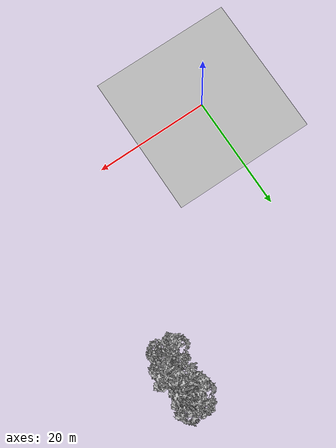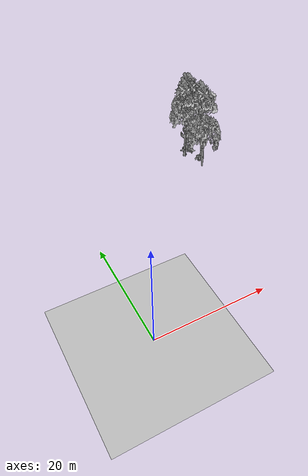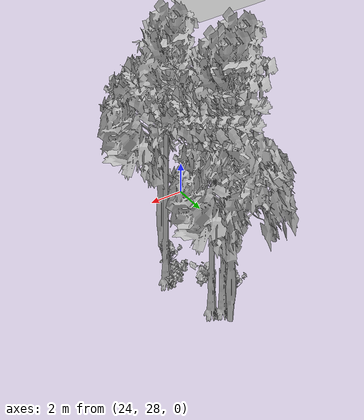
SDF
<sdf version="1.7">
 <world name="default">
  <model name="ground_plane">
   <static>1</static>
   <link name="link">
    <collision name="collision">
     <pose>-50 0 0 0 -0 0</pose>
     <geometry><plane><normal>0 0 1</normal><size>80 80</size></plane></geometry>
     <surface><contact><ode><min_depth>0.01</min_depth><max_vel>0</max_vel></ode></contact></surface>
    </collision>
    <visual name="grass">
     <cast_shadows>0</cast_shadows>
     <geometry>
      <mesh>
       <scale>0.46714285714285714 0.46714285714285714 0.1</scale>
       <uri>file://grass_plane/meshes/grass_plane.dae</uri>
      </mesh>
     </geometry>
    </visual>
   </link>
  </model>
  <model name="Tree 120">
   <static>1</static>
   <pose>28.46346168655623 37.91754921445447 0 1.57079 -0 0</pose>
   <link name="link">
    <collision name="collision">
     <geometry><mesh><scale>3.5 5 3.5</scale><uri>model://tree_9/meshes/tree_9.obj</uri></mesh></geometry>
    </collision>
    <visual name="visual">
     <geometry><mesh><scale>3.5 5 3.5</scale><uri>model://tree_9/meshes/tree_9.obj</uri></mesh></geometry>
    </visual>
   </link>
  </model>
  <model name="Tree 149">
   <static>1</static>
   <pose>28.056543395080567 39.23460713291536 0 1.57079 -0 0</pose>
   <link name="link">
    <collision name="collision">
     <geometry><mesh><scale>3.5 5 3.5</scale><uri>model://tree_2/meshes/tree_2.obj</uri></mesh></geometry>
    </collision>
    <visual name="visual">
     <geometry><mesh><scale>3.5 5 3.5</scale><uri>model://tree_2/meshes/tree_2.obj</uri></mesh></geometry>
    </visual>
   </link>
  </model>
  <model name="Tree 265">
   <static>1</static>
   <pose>27.914727630627098 38.176580582846896 0 1.57079 -0 0</pose>
   <link name="link">
    <collision name="collision">
     <geometry><mesh><scale>3.5 5 3.5</scale><uri>model://tree_9/meshes/tree_9.obj</uri></mesh></geometry>
    </collision>
    <visual name="visual">
     <geometry><mesh><scale>3.5 5 3.5</scale><uri>model://tree_9/meshes/tree_9.obj</uri></mesh></geometry>
    </visual>
   </link>
  </model>
  <model name="Tree 276">
   <static>1</static>
   <pose>29.076298586194994 34.352491461080476 0 1.57079 -0 0</pose>
   <link name="link">
    <collision name="collision">
     <geometry><mesh><scale>3.5 5 3.5</scale><uri>model://tree_9/meshes/tree_9.obj</uri></mesh></geometry>
    </collision>
    <visual name="visual">
     <geometry><mesh><scale>3.5 5 3.5</scale><uri>model://tree_9/meshes/tree_9.obj</uri></mesh></geometry>
    </visual>
   </link>
  </model>
  <model name="Tree 327">
   <static>1</static>
   <pose>26.712314618789406 36.99960084898679 0 1.57079 -0 0</pose>
   <link name="link">
    <collision name="collision">
     <geometry><mesh><scale>3.5 5 3.5</scale><uri>model://tree_9/meshes/tree_9.obj</uri></mesh></geometry>
    </collision>
    <visual name="visual">
     <geometry><mesh><scale>3.5 5 3.5</scale><uri>model://tree_9/meshes/tree_9.obj</uri></mesh></geometry>
    </visual>
   </link>
  </model>
  <model name="Tree 422">
   <static>1</static>
   <pose>27.628824107177437 31.703989414311934 0 1.57079 -0 0</pose>
   <link name="link">
    <collision name="collision">
     <geometry><mesh><scale>3.5 5 3.5</scale><uri>model://tree_2/meshes/tree_2.obj</uri></mesh></geometry>
    </collision>
    <visual name="visual">
     <geometry><mesh><scale>3.5 5 3.5</scale><uri>model://tree_2/meshes/tree_2.obj</uri></mesh></geometry>
    </visual>
   </link>
  </model>
  <model name="Bush 185">
   <static>1</static>
   <pose>27.976684331972038 33.90126594950681 0 1.57079 -0 0</pose>
   <link name="link">
    <collision name="collision">
     <geometry><mesh><scale>2 2 2</scale><uri>model://bush_2/meshes/bush_2.obj</uri></mesh></geometry>
     <surface><contact><collide_without_contact>false</collide_without_contact></contact></surface>
    </collision>
    <visual name="visual">
     <geometry><mesh><scale>2 2 2</scale><uri>model://bush_2/meshes/bush_2.obj</uri></mesh></geometry>
    </visual>
   </link>
  </model>
  <model name="Bush 198">
   <static>1</static>
   <pose>28.155071126113455 33.162231667735085 0 1.57079 -0 0</pose>
   <link name="link">
    <collision name="collision">
     <geometry><mesh><scale>2 2 2</scale><uri>model://bush_4/meshes/bush_4.obj</uri></mesh></geometry>
     <surface><contact><collide_without_contact>false</collide_without_contact></contact></surface>
    </collision>
    <visual name="visual">
     <geometry><mesh><scale>2 2 2</scale><uri>model://bush_4/meshes/bush_4.obj</uri></mesh></geometry>
    </visual>
   </link>
  </model>
  <model name="Bush 277">
   <static>1</static>
   <pose>28.707826822742803 34.57773944542302 0 1.57079 -0 0</pose>
   <link name="link">
    <collision name="collision">
     <geometry><mesh><scale>2 2 2</scale><uri>model://bush_2/meshes/bush_2.obj</uri></mesh></geometry>
     <surface><contact><collide_without_contact>false</collide_without_contact></contact></surface>
    </collision>
    <visual name="visual">
     <geometry><mesh><scale>2 2 2</scale><uri>model://bush_2/meshes/bush_2.obj</uri></mesh></geometry>
    </visual>
   </link>
  </model>
  <model name="Bush 373">
   <static>1</static>
   <pose>26.59175378290071 37.200555295880434 0 1.57079 -0 0</pose>
   <link name="link">
    <collision name="collision">
     <geometry><mesh><scale>2 2 2</scale><uri>model://bush_4/meshes/bush_4.obj</uri></mesh></geometry>
     <surface><contact><collide_without_contact>false</collide_without_contact></contact></surface>
    </collision>
    <visual name="visual">
     <geometry><mesh><scale>2 2 2</scale><uri>model://bush_4/meshes/bush_4.obj</uri></mesh></geometry>
    </visual>
   </link>
  </model>
  <model name="Bush 378">
   <static>1</static>
   <pose>27.84845632858432 36.00848309509301 0 1.57079 -0 0</pose>
   <link name="link">
    <collision name="collision">
     <geometry><mesh><scale>2 2 2</scale><uri>model://bush_0/meshes/bush_0.obj</uri></mesh></geometry>
     <surface><contact><collide_without_contact>false</collide_without_contact></contact></surface>
    </collision>
    <visual name="visual">
     <geometry><mesh><scale>2 2 2</scale><uri>model://bush_0/meshes/bush_0.obj</uri></mesh></geometry>
    </visual>
   </link>
  </model>
  <model name="Bush 411">
   <static>1</static>
   <pose>28.71852507674575 34.454723484558 0 1.57079 -0 0</pose>
   <link name="link">
    <collision name="collision">
     <geometry><mesh><scale>2 2 2</scale><uri>model://bush_2/meshes/bush_2.obj</uri></mesh></geometry>
     <surface><contact><collide_without_contact>false</collide_without_contact></contact></surface>
    </collision>
    <visual name="visual">
     <geometry><mesh><scale>2 2 2</scale><uri>model://bush_2/meshes/bush_2.obj</uri></mesh></geometry>
    </visual>
   </link>
  </model>
 </world>
</sdf>
